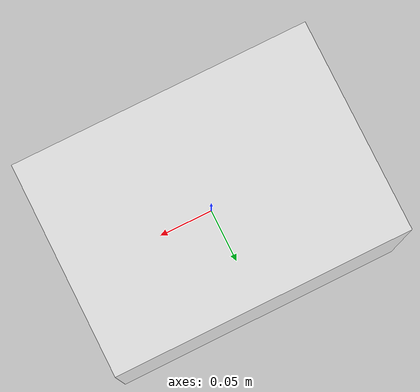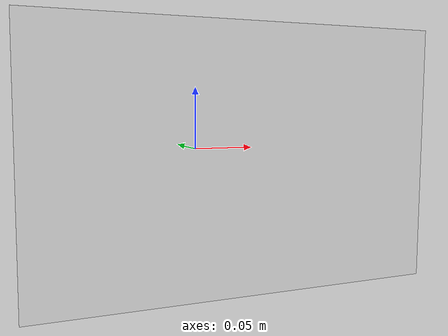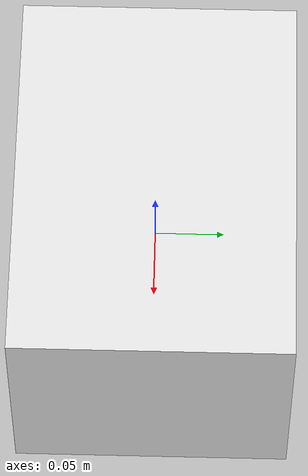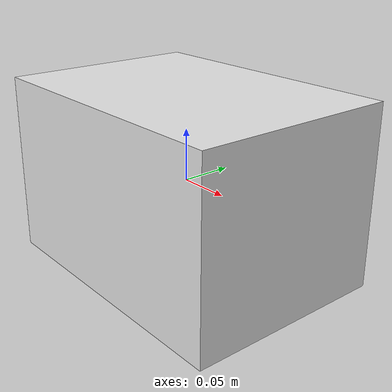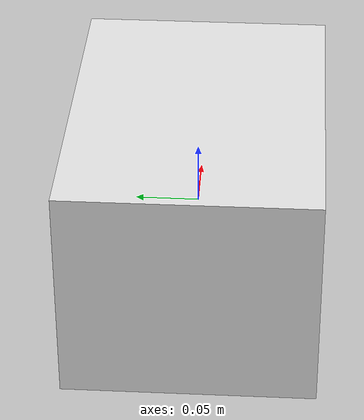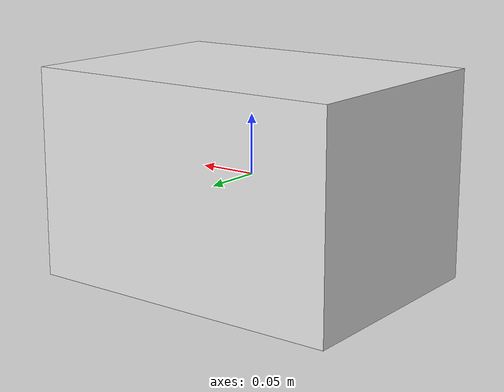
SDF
<?xml version="1.0"?>
<sdf version="1.7">
  <model name="box_intel_nuc">

    <!-- This is a model of an empty Intel NUC box. -->

    <!-- The model for a solid box of uniform density. -->
    <link name="box">
      <inertial>
        <mass>0.01</mass>
        <inertia>
          <ixx>0.00848008333333333</ixx>
          <ixy>0</ixy>
          <ixz>0</ixz>
          <iyy>0.012947533333333332</iyy>
          <iyz>0</iyz>
          <izz>0.01394175</izz>
        </inertia>
      </inertial>

      <visual name="box_visual">
        <geometry>
          <box>
            <size>0.276 0.198 0.176</size>
          </box>
        </geometry>
        <material>
          <diffuse>0.9 0.9 0.9 0.9</diffuse>
        </material>
      </visual>

      <collision name="collision">
        <geometry>
          <box>
            <size>0.276 0.198 0.176</size>
          </box>
        </geometry>
        <surface>
          <friction>
            <ode>
              <mu>0.5</mu>
              <mu2>0.5</mu2>
            </ode>
          </friction>
        </surface>
        <drake:proximity_properties>
          <drake:compliant_hydroelastic/>
          <drake:mesh_resolution_hint>0.1</drake:mesh_resolution_hint>
          <drake:hydroelastic_modulus>5e6</drake:hydroelastic_modulus>
          <drake:hunt_crossley_dissipation>3.0</drake:hunt_crossley_dissipation>
        </drake:proximity_properties>
      </collision>

      <collision name="sphere_center">
        <pose> 0 0 0 0 0 0</pose>
        <geometry>
          <sphere>
            <radius>0.088</radius>
          </sphere>
        </geometry>
        <surface>
          <friction>
            <ode>
              <mu>0.5</mu>
              <mu2>0.5</mu2>
            </ode>
          </friction>
        </surface>
      </collision>
      <visual name="sphere_center_visual">
        <pose> 0 0 0 0 0 0</pose>
        <geometry>
          <sphere>
            <radius>0.088</radius>
          </sphere>
        </geometry>
        <material>
          <diffuse>0 1 0 0.8</diffuse>
        </material>
      </visual>

      <collision name="sphere_corner_1">
        <pose> -0.108 -0.069 -0.058 0 0 0</pose>
        <geometry>
          <sphere>
            <radius>0.03</radius>
          </sphere>
        </geometry>
        <surface>
          <friction>
            <ode>
              <mu>0.5</mu>
              <mu2>0.5</mu2>
            </ode>
          </friction>
        </surface>
      </collision>
      <visual name="sphere_corner_1_visual">
        <pose> -0.108 -0.069 -0.058 0 0 0</pose>
        <geometry>
          <sphere>
            <radius>0.03</radius>
          </sphere>
        </geometry>
        <material>
          <diffuse>0 1 0 0.8</diffuse>
        </material>
      </visual>

      <collision name="sphere_corner_2">
        <pose> 0.108 -0.069 -0.058 0 0 0</pose>
        <geometry>
          <sphere>
            <radius>0.03</radius>
          </sphere>
        </geometry>
        <surface>
          <friction>
            <ode>
              <mu>0.5</mu>
              <mu2>0.5</mu2>
            </ode>
          </friction>
        </surface>
      </collision>
      <visual name="sphere_corner_2_visual">
        <pose> 0.108 -0.069 -0.058 0 0 0</pose>
        <geometry>
          <sphere>
            <radius>0.03</radius>
          </sphere>
        </geometry>
        <material>
          <diffuse>0 1 0 0.8</diffuse>
        </material>
      </visual>

      <collision name="sphere_corner_3">
        <pose> -0.108 0.069 -0.058 0 0 0</pose>
        <geometry>
          <sphere>
            <radius>0.03</radius>
          </sphere>
        </geometry>
        <surface>
          <friction>
            <ode>
              <mu>0.5</mu>
              <mu2>0.5</mu2>
            </ode>
          </friction>
        </surface>
      </collision>
      <visual name="sphere_corner_3_visual">
        <pose> -0.108 0.069 -0.058 0 0 0</pose>
        <geometry>
          <sphere>
            <radius>0.03</radius>
          </sphere>
        </geometry>
        <material>
          <diffuse>0 1 0 0.8</diffuse>
        </material>
      </visual>

      <collision name="sphere_corner_4">
        <pose> 0.108 0.069 -0.058 0 0 0</pose>
        <geometry>
          <sphere>
            <radius>0.03</radius>
          </sphere>
        </geometry>
        <surface>
          <friction>
            <ode>
              <mu>0.5</mu>
              <mu2>0.5</mu2>
            </ode>
          </friction>
        </surface>
      </collision>
      <visual name="sphere_corner_4_visual">
        <pose> 0.108 0.069 -0.058 0 0 0</pose>
        <geometry>
          <sphere>
            <radius>0.03</radius>
          </sphere>
        </geometry>
        <material>
          <diffuse>0 1 0 0.8</diffuse>
        </material>
      </visual>

      <collision name="sphere_corner_5">
        <pose> -0.108 -0.069 0.058 0 0 0</pose>
        <geometry>
          <sphere>
            <radius>0.03</radius>
          </sphere>
        </geometry>
        <surface>
          <friction>
            <ode>
              <mu>0.5</mu>
              <mu2>0.5</mu2>
            </ode>
          </friction>
        </surface>
      </collision>
      <visual name="sphere_corner_5_visual">
        <pose> -0.108 -0.069 0.058 0 0 0</pose>
        <geometry>
          <sphere>
            <radius>0.03</radius>
          </sphere>
        </geometry>
        <material>
          <diffuse>0 1 0 0.8</diffuse>
        </material>
      </visual>

      <collision name="sphere_corner_6">
        <pose> 0.108 -0.069 0.058 0 0 0</pose>
        <geometry>
          <sphere>
            <radius>0.03</radius>
          </sphere>
        </geometry>
        <surface>
          <friction>
            <ode>
              <mu>0.5</mu>
              <mu2>0.5</mu2>
            </ode>
          </friction>
        </surface>
      </collision>
      <visual name="sphere_corner_6_visual">
        <pose> 0.108 -0.069 0.058 0 0 0</pose>
        <geometry>
          <sphere>
            <radius>0.03</radius>
          </sphere>
        </geometry>
        <material>
          <diffuse>0 1 0 0.8</diffuse>
        </material>
      </visual>

      <collision name="sphere_corner_7">
        <pose> -0.108 0.069 0.058 0 0 0</pose>
        <geometry>
          <sphere>
            <radius>0.03</radius>
          </sphere>
        </geometry>
        <surface>
          <friction>
            <ode>
              <mu>0.5</mu>
              <mu2>0.5</mu2>
            </ode>
          </friction>
        </surface>
      </collision>
      <visual name="sphere_corner_7_visual">
        <pose> -0.108 0.069 0.058 0 0 0</pose>
        <geometry>
          <sphere>
            <radius>0.03</radius>
          </sphere>
        </geometry>
        <material>
          <diffuse>0 1 0 0.8</diffuse>
        </material>
      </visual>

      <collision name="sphere_corner_8">
        <pose> 0.108 0.069 0.058 0 0 0</pose>
        <geometry>
          <sphere>
            <radius>0.03</radius>
          </sphere>
        </geometry>
        <surface>
          <friction>
            <ode>
              <mu>0.5</mu>
              <mu2>0.5</mu2>
            </ode>
          </friction>
        </surface>
      </collision>
      <visual name="sphere_corner_8_visual">
        <pose> 0.108 0.069 0.058 0 0 0</pose>
        <geometry>
          <sphere>
            <radius>0.03</radius>
          </sphere>
        </geometry>
        <material>
          <diffuse>0 1 0 0.8</diffuse>
        </material>
      </visual>

    </link>
  </model>
</sdf>
